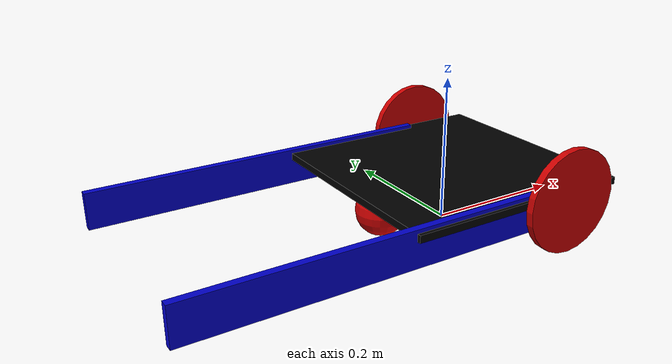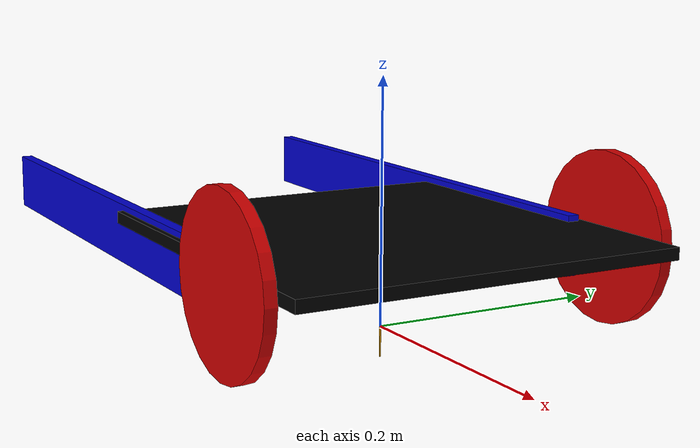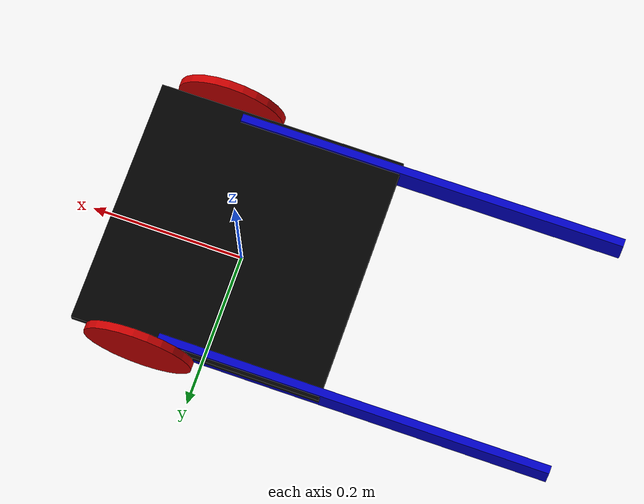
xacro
<?xml version="1.0"?>
<robot xmlns:xacro="http://www.ros.org/wiki/xacro" name="robo">

  <xacro:property name="base_width" value="0.32"/>
  <xacro:property name="base_len" value="0.32"/>
  <xacro:property name="wheel_radius" value="0.07"/>
  <xacro:property name="base_wheel_gap" value="0.007"/>
  <xacro:property name="wheel_separation" value="0.30"/>
  <xacro:property name="wheel_joint_offset" value="0.07"/>

  <xacro:property name="caster_wheel_radius" value="${wheel_radius/2}"/>
  <xacro:property name="caster_wheel_mass" value="0.002"/>
  <xacro:property name="caster_wheel_joint_offset" value="-0.104"/>
  <xacro:include filename="$(find robo)/urdf/robo_gazebo_plugins.xacro"/>

  <!--Color Properties-->
  <material name="blue">
    <color rgba="0 0 0.8 1"/>
  </material>
  <material name="black">
    <color rgba="0 0 0 1"/>
  </material>
  <material name="white">
    <color rgba="1 1 1 1"/>
  </material>
  <material name="red">
    <color rgba="0.8 0.0 0.0 1.0"/>
  </material>

  <!--Interial macros-->
  <xacro:macro name="cylinder_inertia" params="m r h">
    <inertial>
      <mass value="${m}"/>
      <inertia ixx="${m*(3*r*r+h*h)/12}" ixy = "0" ixz = "0" iyy="${m*(3*r*r+h*h)/12}" iyz = "0" izz="${m*r*r/2}"/>
    </inertial>
  </xacro:macro>

  <xacro:macro name="box_inertia" params="m w h d">
    <inertial>
      <mass value="${m}"/>
      <inertia ixx="${m / 12.0 * (d*d + h*h)}" ixy="0.0" ixz="0.0" iyy="${m / 12.0 * (w*w + h*h)}" iyz="0.0" izz="${m / 12.0 * (w*w + d*d)}"/>
    </inertial>
  </xacro:macro>

  <xacro:macro name="sphere_inertia" params="m r">
    <inertial>
      <mass value="${m}"/>
      <inertia ixx="${2.0*m*(r*r)/5.0}" ixy="0.0" ixz="0.0" iyy="${2.0*m*(r*r)/5.0}" iyz="0.0" izz="${2.0*m*(r*r)/5.0}"/>
    </inertial>
  </xacro:macro>

  <!--Base Footprint-->
  <link name="base_footprint">
    <xacro:box_inertia m="10" w="0.001" h="0.001" d="0.001"/>
    <visual>
        <origin xyz="0 0 0" rpy="0 0 0" />
        <geometry>
            <box size="0.001 0.001 0.05" />
        </geometry>
    </visual>
  </link>

  <!--Base link-->
  <link name="base_link">
    <xacro:box_inertia m="1" w="${base_len}" h="${base_width}" d="0.01"/>
    <visual>
      <geometry>
        <box size="${base_len} ${base_width} 0.01"/>
      </geometry>
      <material name="black"/>
    </visual>
    <collision>
      <geometry>
        <box size="${base_len} ${base_width} 0.01"/>
      </geometry>
    </collision>
  </link>

  <!--base_link to base_footprint Joint-->
  <joint name="base_link_joint" type="fixed">
    <origin xyz="0 0 ${wheel_radius + 0.005}" rpy="0 0 0" />
    <parent link="base_footprint"/>
    <child link="base_link" />
  </joint>

  <!--Wheel link & joint macro-->
  <xacro:macro name="wheel" params="prefix reflect">
    <link name="${prefix}_wheel">
      <visual>
        <origin xyz="0 0 0" rpy="${pi/2} 0 0"/>
        <geometry>
          <cylinder radius="${wheel_radius}" length="0.01"/>
        </geometry>
        <material name="red"/>
      </visual>
      <collision>
        <origin xyz="0 0 0" rpy="${pi/2} 0 0"/>
        <geometry>
          <cylinder radius="${wheel_radius}" length="0.01"/>
        </geometry>
      </collision>
      <xacro:cylinder_inertia m="1" r="${wheel_radius}" h="0.01"/>
    </link>

    <joint name="${prefix}_wheel_joint" type="continuous">
      <axis xyz="0 1 0" rpy="0 0 0" />
      <parent link="base_link"/>
      <child link="${prefix}_wheel"/>
      <origin xyz="${wheel_joint_offset} ${((base_width/2)+base_wheel_gap)*reflect} -0.005" rpy="0 0 0"/>
    </joint>

  </xacro:macro>

  <!--Create Left & Right Wheel links/joints-->
  <xacro:wheel prefix="left" reflect="1"/>
  <xacro:wheel prefix="right" reflect="-1"/>

  <!--Caster Wheel Link-->
  <link name="caster_wheel">
    <visual>
      <origin xyz="0 0 0" rpy="0 0 0"/>
      <geometry>
        <sphere radius="${caster_wheel_radius}"/>
      </geometry>
      <material name="red"/>
    </visual>
    <collision>
      <origin xyz="0 0 0" rpy="0 0 0"/>
      <geometry>
        <sphere radius="${caster_wheel_radius}"/>
      </geometry>
    </collision>
    <xacro:sphere_inertia m="1" r="${caster_wheel_radius}"/>
  </link>

  <!--Caster Wheel Joint-->
  <joint name="caster_wheel_joint" type="continuous">
    <axis xyz="0 1 0" rpy="0 0 0" />
    <parent link="base_link"/>
    <child link="caster_wheel"/>
    <origin xyz="${caster_wheel_joint_offset} 0 -${caster_wheel_radius+0.005}" rpy="0 0 0"/>
  </joint>

<!--left guide-->
<link name="left_guide">
  <xacro:box_inertia m="1" w="${base_len}" h="${base_width}" d="0.01"/>
  <visual>
    <geometry>
      <box size="0.5 0.01 0.05"/>
    </geometry>
  <link name="left_guide">
    <xacro:box_inertia m="1" w="${base_len}" h="${base_width}" d="0.01"/>
    <visual>
      <geometry>
        <box size="0.5 0.01 0.05"/>
      </geometry>
      <material name="blue"/>
    </visual>
    <collision>
      <geometry>
        <box size="0.5 0.01 0.05"/>
      </geometry>
    </collision>
  </link>

  <!--left_guide to left_guide Joint-->
  <joint name="left_guide_joint" type="fixed">
    <origin xyz="-0.2 0.5 0.0" rpy="0 0 0" />
    <parent link="base_footprint"/>
    <child link="left_guide" />
  </joint>
    <material name="blue"/>
  </visual>
  <collision>
    <geometry>
      <box size="0.5 0.01 0.05"/>
    </geometry>
  </collision>
</link>

<!--left_guide to left_guide Joint-->
<joint name="left_guide_joint" type="fixed">
  <origin xyz="-0.2 0.15 0.06" rpy="0 0 0" />
  <parent link="base_footprint"/>
  <child link="left_guide" />
</joint>

<!--right guide-->
<link name="right_guide">
  <xacro:box_inertia m="1" w="${base_len}" h="${base_width}" d="0.01"/>
  <visual>
    <geometry>
      <box size="0.5 0.01 0.05"/>
    </geometry>
  <link name="right_guide">
    <xacro:box_inertia m="1" w="${base_len}" h="${base_width}" d="0.01"/>
    <visual>
      <geometry>
        <box size="0.5 0.01 0.05"/>
      </geometry>
      <material name="blue"/>
    </visual>
    <collision>
      <geometry>
        <box size="0.5 0.01 0.05"/>
      </geometry>
    </collision>
  </link>

  <!--right_guide to right_guide Joint-->
  <joint name="right_guide_joint" type="fixed">
    <origin xyz="-0.2 0.15 0.06" rpy="0 0 0" />
    <parent link="base_footprint"/>
    <child link="right_guide" />
  </joint>
    <material name="blue"/>
  </visual>
  <collision>
    <geometry>
      <box size="0.5 0.01 0.05"/>
    </geometry>
  </collision>
</link>

<!--right_guide to right_guide Joint-->
<joint name="right_guide_joint" type="fixed">
  <origin xyz="-0.2 -0.15 0.06" rpy="0 0 0" />
  <parent link="base_footprint"/>
  <child link="right_guide" />
</joint>

</robot>
